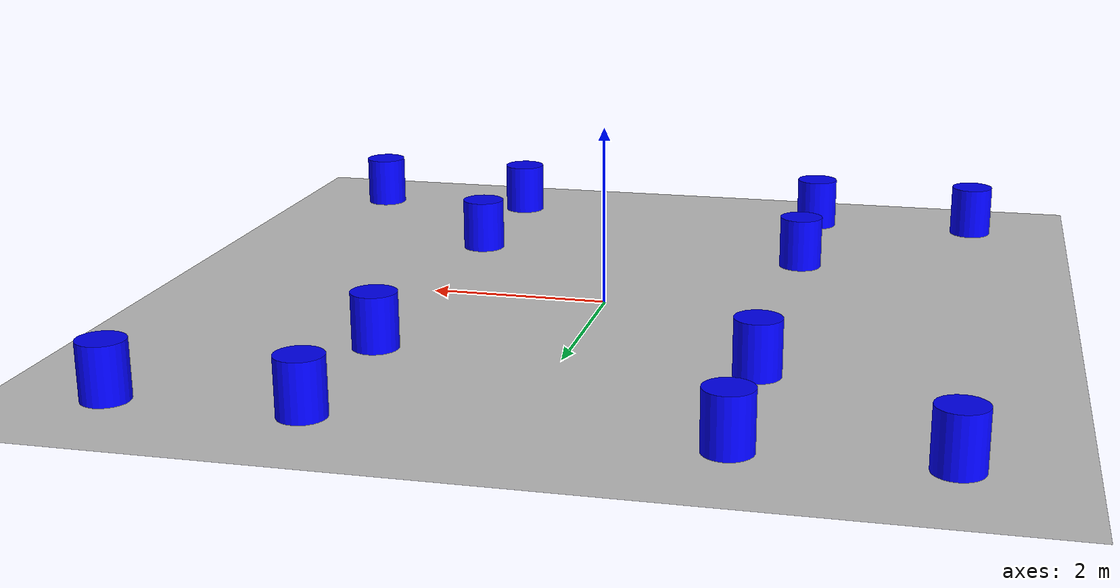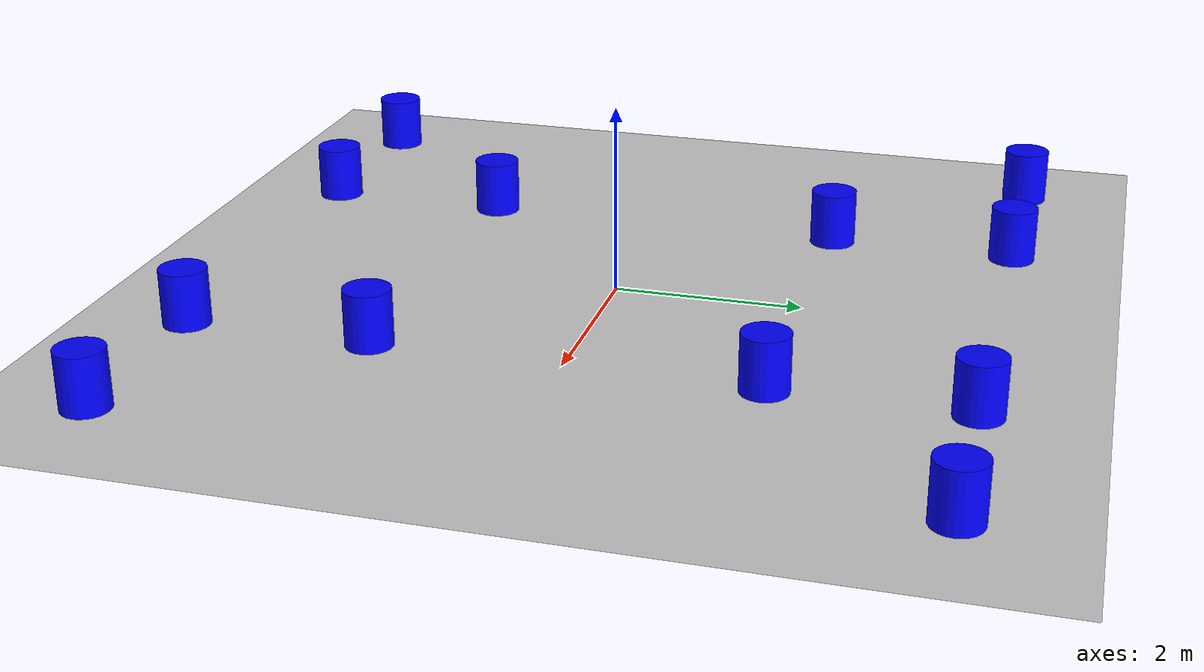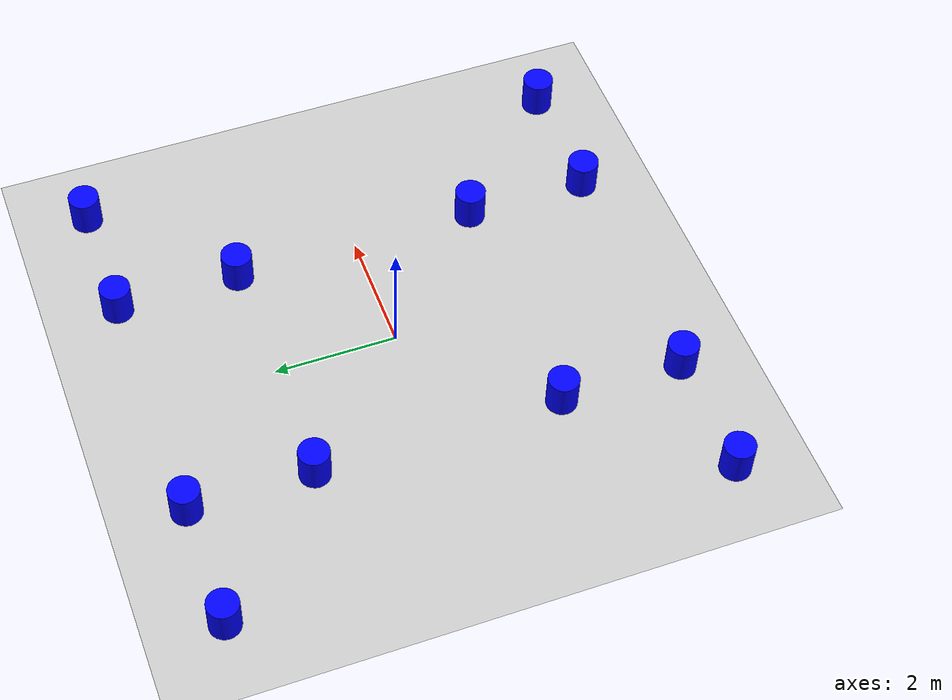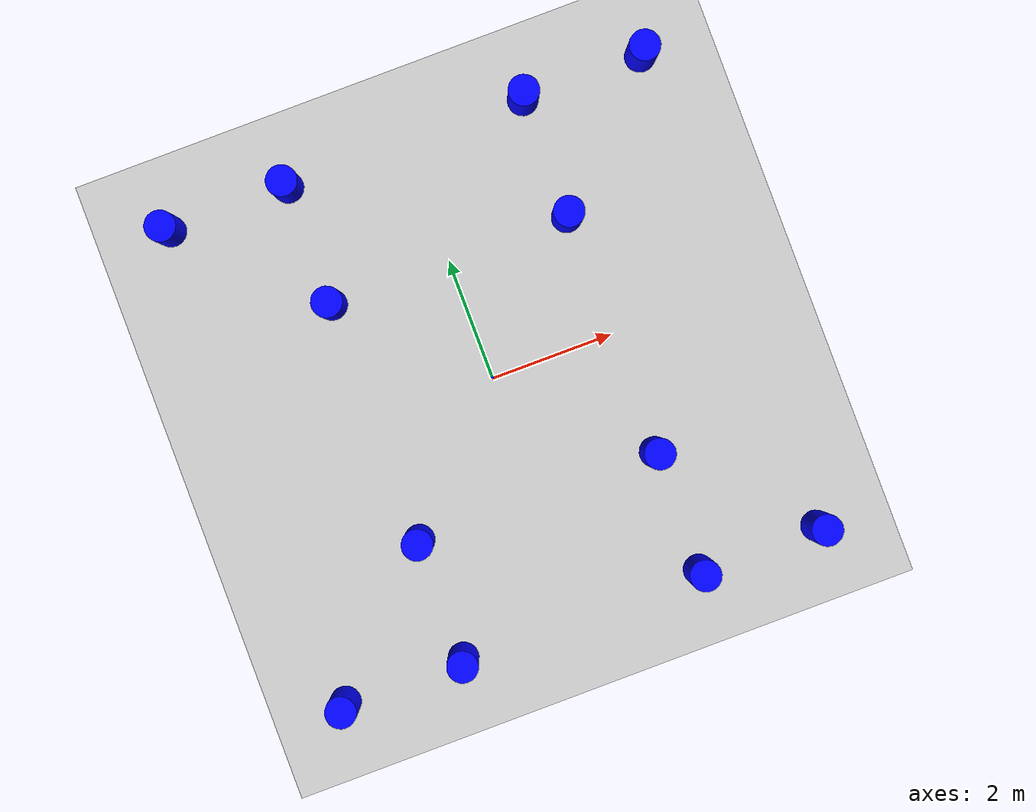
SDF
<sdf version="1.6">
 <world name="static_world">
  <physics name="1ms" type="ignored">
   <max_step_size>0.001</max_step_size>
   <real_time_factor>1.0</real_time_factor>
  </physics>
  <plugin filename="gz-sim-contact-system" name="gz::sim::systems::Contact"/>
  <plugin filename="gz-sim-imu-system" name="gz::sim::systems::Imu"/>
  <plugin filename="gz-sim-physics-system" name="gz::sim::systems::Physics"/>
  <plugin filename="gz-sim-scene-broadcaster-system" name="gz::sim::systems::SceneBroadcaster"/>
  <plugin filename="gz-sim-sensors-system" name="gz::sim::systems::Sensors"/>
  <plugin filename="gz-sim-user-commands-system" name="gz::sim::systems::UserCommands"/>
  <spherical_coordinates>
   <surface_model>EARTH_WGS84</surface_model>
   <world_frame_orientation>ENU</world_frame_orientation>
   <latitude_deg>50.088384</latitude_deg>
   <longitude_deg>19.939128</longitude_deg>
   <elevation>0</elevation>
   <heading_deg>0</heading_deg>
  </spherical_coordinates>
  <light type="directional" name="sun">
   <pose>0 0 10 0 0 0</pose>
   <diffuse>0.8 0.8 0.8 1</diffuse>
   <specular>0.2 0.2 0.2 1</specular>
   <attenuation>
    <range>1000</range>
    <constant>0.9</constant>
    <linear>0.01</linear>
    <quadratic>0.001</quadratic>
   </attenuation>
   <direction>-0.5 0.1 -0.9</direction>
  </light>
  <model name="ground_plane">
   <static>true</static>
   <link name="link">
    <collision name="collision">
     <geometry><plane><normal>0 0 1</normal><size>100 100</size></plane></geometry>
    </collision>
    <visual name="visual">
     <geometry><plane><normal>0 0 1</normal><size>100 100</size></plane></geometry>
     <material>
      <ambient>0.8 0.8 0.8 1</ambient>
      <diffuse>0.8 0.8 0.8 1</diffuse>
      <specular>0.8 0.8 0.8 1</specular>
     </material>
    </visual>
   </link>
  </model>
  <model name="obstacle_1">
   <pose>2 2 0.1 0 0 0</pose>
   <include><uri>model://obstacle</uri></include>
   <plugin filename="gz-sim-pose-publisher-system" name="gz::sim::systems::PosePublisher">
    <publish_link_pose>true</publish_link_pose>
    <publish_collision_pose>false</publish_collision_pose>
    <publish_visual_pose>false</publish_visual_pose>
    <publish_nested_model_pose>false</publish_nested_model_pose>
   </plugin>
  </model>
  <model name="obstacle_2"><pose>2 -2 0.1 0 0 0</pose><include><uri>model://obstacle</uri></include></model>
  <model name="obstacle_3"><pose>-2 -2 0.1 0 0 0</pose><include><uri>model://obstacle</uri></include></model>
  <model name="obstacle_4"><pose>-2 2 0.1 0 0 0</pose><include><uri>model://obstacle</uri></include></model>
  <model name="obstacle_5"><pose>4 4 0.1 0 0 0</pose><include><uri>model://obstacle</uri></include></model>
  <model name="obstacle_6"><pose>4 -4 0.1 0 0 0</pose><include><uri>model://obstacle</uri></include></model>
  <model name="obstacle_7"><pose>-4 -4 0.1 0 0 0</pose><include><uri>model://obstacle</uri></include></model>
  <model name="obstacle_8"><pose>-4 4 0.1 0 0 0</pose><include><uri>model://obstacle</uri></include></model>
  <model name="obstacle_9"><pose>2 4 0.1 0 0 0</pose><include><uri>model://obstacle</uri></include></model>
  <model name="obstacle_10"><pose>2 -4 0.1 0 0 0</pose><include><uri>model://obstacle</uri></include></model>
  <model name="obstacle_11"><pose>-2 -4 0.1 0 0 0</pose><include><uri>model://obstacle</uri></include></model>
  <model name="obstacle_12"><pose>-2 4 0.1 0 0 0</pose><include><uri>model://obstacle</uri></include></model>
 </world>
</sdf>

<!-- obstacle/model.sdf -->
<sdf version='1.7'>
    <model name="obstacle">
      <link name="link">
        <collision name="collision">
          <geometry>
            <cylinder>
              <radius>0.25</radius>
              <length>1.0</length>
            </cylinder>
          </geometry>
        </collision>

        <visual name="visual">
          <geometry>
            <cylinder>
              <radius>0.25</radius>
              <length>1.0</length>
            </cylinder>
          </geometry>
          <material>
            <ambient>0.0 0.0 1.0 1</ambient>
            <diffuse>0.0 0.0 1.0 1</diffuse>
            <specular>0.0 0.0 1.0 1</specular>
          </material>
        </visual>
      </link>
    </model>
</sdf>
